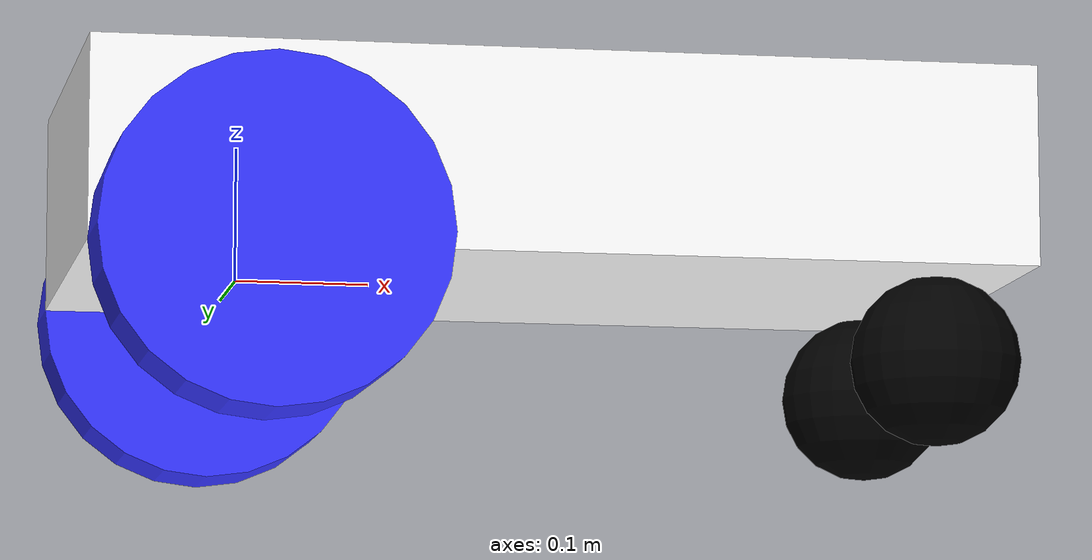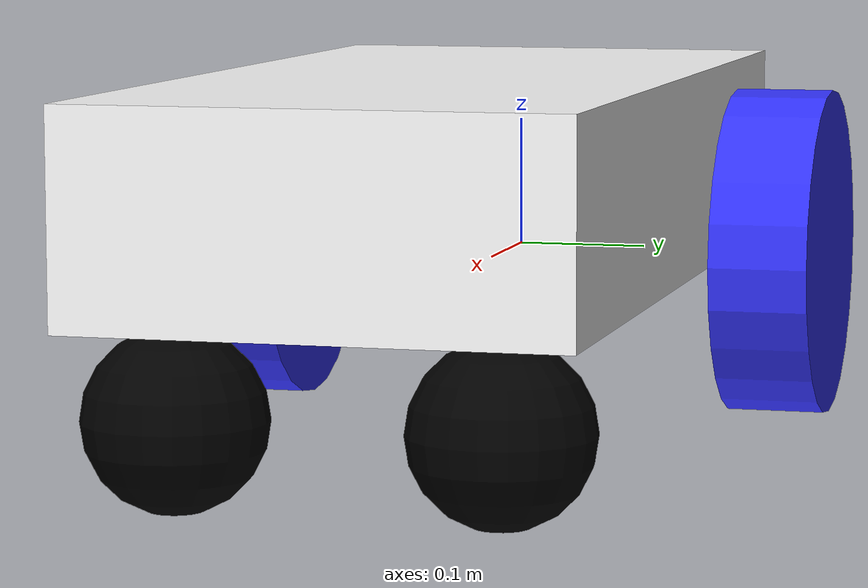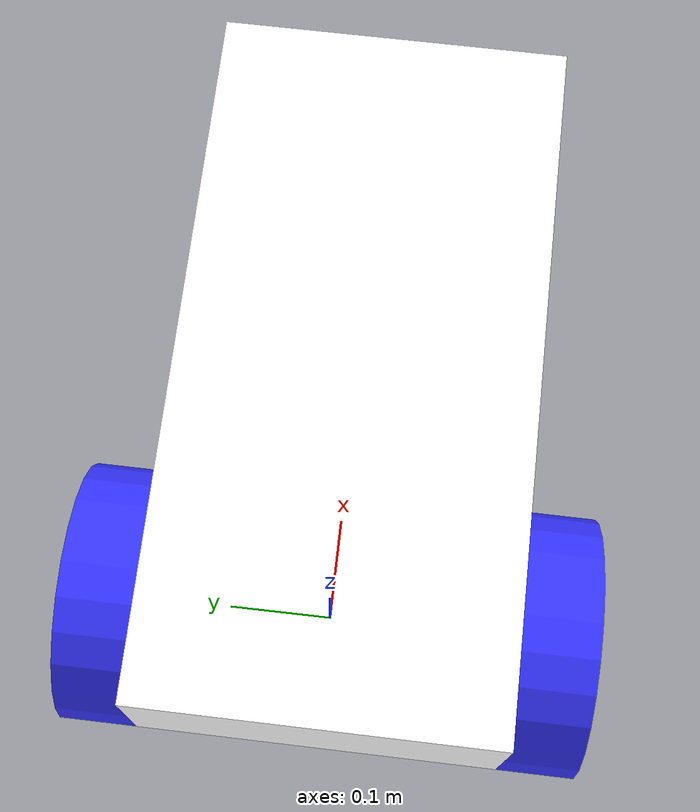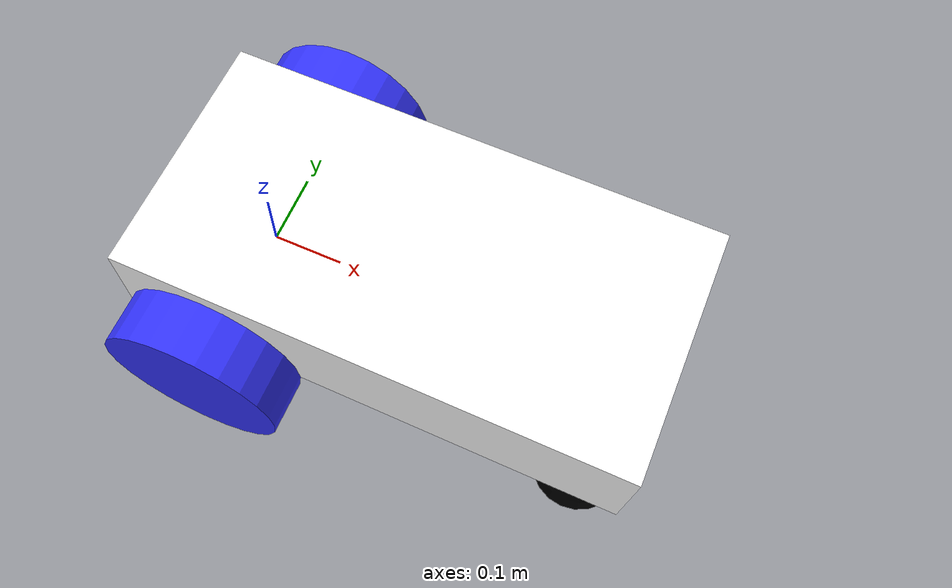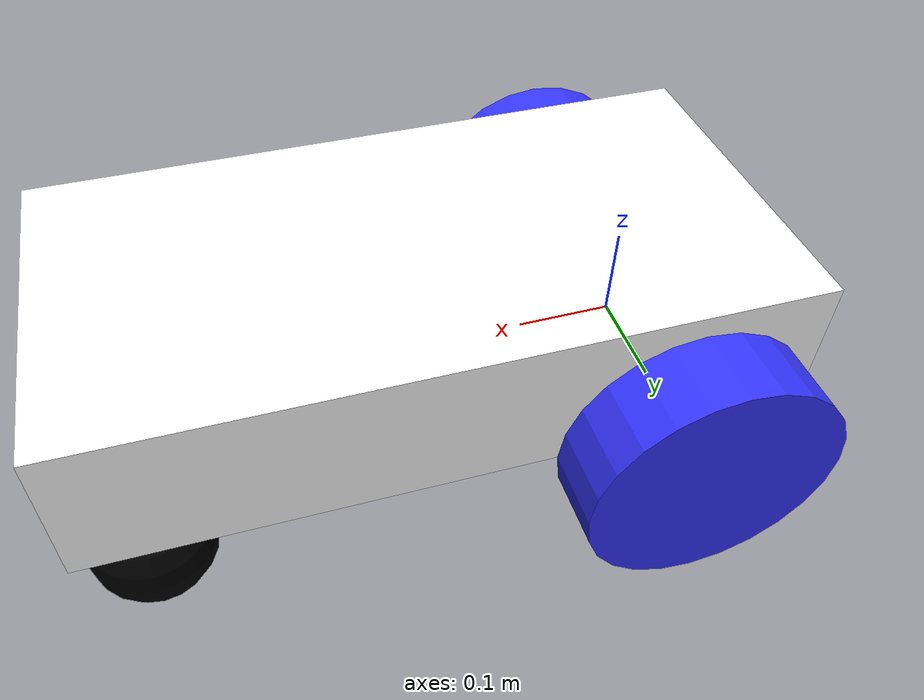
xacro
<?xml version="1.0"?>
<robot xmlns:xacro="http://www.ros.org/wiki/xacro">

<!--This defines the physical structure and properties of the robot.-->

        <!-- Chassis Variables (all in meters/kg) -->
    <xacro:property name="box_length" value="0.7"/> <!--Adjust footprint to reflect changes here-->
    <xacro:property name="box_width" value="0.35"/>
    <xacro:property name="box_height" value="0.15"/>
    <xacro:property name="box_mass" value="10"/>

    <xacro:property name="wheel_width" value="0.075"/> <!--Adjust footprint to reflect changes here-->
    <xacro:property name="wheel_radius" value="0.127"/>
    <xacro:property name="wheel_offset" value="${box_width/2 + wheel_width/2}"/>
    <xacro:property name="wheel_mass" value="1.0"/> <!--kg-->
    <xacro:property name="wheel_torque" value="50"/>
    <xacro:property name="wheel_speed" value="5.0"/> <!--rad/s-->

    <xacro:property name="caster_radius" value="0.0635"/>
    <xacro:property name="caster_Xoffset" value="${box_length - caster_radius}"/>
    <xacro:property name="caster_Yoffset" value="${box_width/2 - caster_radius}"/>
    <xacro:property name="caster_Zoffset" value="${-wheel_radius + caster_radius}"/>
    <xacro:property name="caster_mass" value="0.5"/>

    <xacro:include filename="inertial_macros.xacro" />

    <!--BASE LINK-->
    <link name="base_link">
    </link>

        <!-- BASE_FOOTPRINT -->
        <!--The base location in flat 2D since the robot will be changing elevation-->
    <joint name="base_footprint_joint" type="fixed">
        <parent link="base_link"/>
        <child link="base_footprint"/>
        <origin xyz="0 0 -${wheel_radius}" rpy="0 0 0"/>
    </joint>

    <link name="base_footprint">
    </link>

    <!-- Chassis -->

    <joint name="chassis_joint" type="fixed">
        <parent link="base_link"/>
        <child link="chassis"/>
        <origin xyz="-${wheel_radius} 0 0"/>
    </joint>

    <link name="chassis">
        <visual>
            <origin xyz="${box_length / 2.0} 0 ${box_height / 2.0}" rpy="0 0 0"/>
            <geometry>
                <box size="${box_length} ${box_width} ${box_height}"/>
            </geometry>
            <material name="white"/>
        </visual>
        <collision>
             <origin xyz="${box_length / 2.0} 0 ${box_height / 2.0}" rpy="0 0 0"/>
            <geometry>
                <box size="${box_length} ${box_width} ${box_height}"/>
            </geometry>
        </collision>
        <xacro:inertial_box mass="${box_mass}" x="${box_length}" y="${box_width}" z="${box_height}">
            <origin xyz="${box_length / 2.0} 0 ${box_height / 2.0}" rpy="0 0 0"/>
        </xacro:inertial_box>
    </link>

    <!-- LEFT WHEEL -->

    <joint name="left_wheel_joint" type="continuous">
        <parent link="base_link"/>
        <child link="left_wheel"/>
        <origin xyz="0 ${wheel_offset} 0" rpy="-${pi/2} 0 0"/>
        <axis xyz="0 0 1"/>
        <limit effort="${wheel_torque}" velocity="${wheel_speed}"/>

    </joint>

    <link name="left_wheel">
        <visual>
            <geometry>
                <cylinder length="${wheel_width}" radius="${wheel_radius}" />
            </geometry>
            <material name="blue"/>
        </visual>
        <collision>
            <geometry>
                <sphere radius="${wheel_radius}" /> <!--Sphere for friction/simulation purposes-->
            </geometry>
        </collision>
        <xacro:inertial_cylinder mass="${wheel_mass}" length="${wheel_width}" radius="${wheel_radius}">
            <origin xyz="0 0 0" rpy="0 0 0"/>
        </xacro:inertial_cylinder>
    </link>

    <gazebo reference="left_wheel">
        <!--Fricition parameters-->
        <mu1 value="0.7"/>
        <mu2 value="0.7"/>
    </gazebo>

    <!-- RIGHT WHEEL -->

    <joint name="right_wheel_joint" type="continuous">
        <parent link="base_link"/>
        <child link="right_wheel"/>
        <origin xyz="0 -${wheel_offset} 0" rpy="${pi/2} 0 0"/>
        <axis xyz="0 0 -1"/>
        <limit effort="${wheel_torque}" velocity="${wheel_speed}"/>
    </joint>

    <link name="right_wheel">
        <visual>
            <geometry>
                <cylinder length="${wheel_width}" radius="${wheel_radius}" />
            </geometry>
            <material name="blue"/>
        </visual>
        <collision>
            <geometry>
                <sphere radius="${wheel_radius}" /> <!--Sphere for friction/simulation purposes-->
            </geometry>
        </collision>
        <xacro:inertial_cylinder mass="${wheel_mass}" length="${wheel_width}" radius="${wheel_radius}">
            <origin xyz="0 0 0" rpy="0 0 0"/>
        </xacro:inertial_cylinder>
    </link>

    <gazebo reference="right_wheel">
        <!--Fricition parameters-->
        <mu1 value="0.7"/>
        <mu2 value="0.7"/>
    </gazebo>

    <!-- LEFT CASTER WHEEL -->

    <joint name="left_caster_wheel_joint" type="fixed">
        <parent link="chassis"/>
        <child link="left_caster_wheel"/>
        <origin xyz="${caster_Xoffset} ${caster_Yoffset} ${caster_Zoffset}" rpy="0 0 0"/>
    </joint>

    <link name="left_caster_wheel">
        <visual>
            <geometry>
                <sphere radius="${caster_radius}" />
            </geometry>
            <material name="black"/>
        </visual>
        <collision>
            <geometry>
                <sphere radius="${caster_radius}" />
            </geometry>
        </collision>
        <xacro:inertial_sphere mass="${caster_mass}" radius="${caster_radius}">
            <origin xyz="0 0 0" rpy="0 0 0"/>
        </xacro:inertial_sphere>
    </link>

    <gazebo reference="left_caster_wheel">
        <!--Friction parameters-->
        <mu1 value="0.0"/>
        <mu2 value="0.0"/>
    </gazebo>

       <!-- RIGHT CASTER WHEEL -->

    <joint name="right_caster_wheel_joint" type="fixed">
        <parent link="chassis"/>
        <child link="right_caster_wheel"/>
        <origin xyz="${caster_Xoffset} ${-caster_Yoffset} ${caster_Zoffset}" rpy="0 0 0"/>
    </joint>

    <link name="right_caster_wheel">
        <visual>
            <geometry>
                <sphere radius="${caster_radius}" />
            </geometry>
            <material name="black"/>
        </visual>
        <collision>
            <geometry>
                <sphere radius="${caster_radius}" />
            </geometry>
        </collision>
        <xacro:inertial_sphere mass="${caster_mass}" radius="${caster_radius}">
            <origin xyz="0 0 0" rpy="0 0 0"/>
        </xacro:inertial_sphere>
    </link>

    <gazebo reference="right_caster_wheel">
        <!--Fricition parameters-->
        <mu1 value="0.0"/>
        <mu2 value="0.0"/>
    </gazebo>

        <material name="white">
        <color rgba="1 1 1 1"/>
    </material>

    <material name="orange">
        <color rgba="1 0.3 0.1 1"/>
    </material>

    <material name="blue">
        <color rgba="0.2 0.2 1 1"/>
    </material>

    <material name="black">
        <color rgba="0 0 0 1"/>
    </material>

    <material name="red">
        <color rgba="1 0 0 1"/>
    </material>

</robot>

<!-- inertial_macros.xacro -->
<robot xmlns:xacro="http://www.ros.org/wiki/xacro" >

    <!-- Macros to make physics calculations simpler -->
    <!-- Specify some standard inertial calculations https://en.wikipedia.org/wiki/List_of_moments_of_inertia -->
    <!-- These make use of xacro's mathematical functionality -->

    <xacro:macro name="inertial_sphere" params="mass radius *origin">
        <inertial>
            <xacro:insert_block name="origin"/>
            <mass value="${mass}" />
            <inertia ixx="${(2/5) * mass * (radius*radius)}" ixy="0.0" ixz="0.0"
                    iyy="${(2/5) * mass * (radius*radius)}" iyz="0.0"
                    izz="${(2/5) * mass * (radius*radius)}" />
        </inertial>
    </xacro:macro>

    <xacro:macro name="inertial_box" params="mass x y z *origin">
        <inertial>
            <xacro:insert_block name="origin"/>
            <mass value="${mass}" />
            <inertia ixx="${(1/12) * mass * (y*y+z*z)}" ixy="0.0" ixz="0.0"
                    iyy="${(1/12) * mass * (x*x+z*z)}" iyz="0.0"
                    izz="${(1/12) * mass * (x*x+y*y)}" />
        </inertial>
    </xacro:macro>

    <xacro:macro name="inertial_cylinder" params="mass length radius *origin">
        <inertial>
            <xacro:insert_block name="origin"/>
            <mass value="${mass}" />
            <inertia ixx="${(1/12) * mass * (3*radius*radius + length*length)}" ixy="0.0" ixz="0.0"
                    iyy="${(1/12) * mass * (3*radius*radius + length*length)}" iyz="0.0"
                    izz="${(1/2) * mass * (radius*radius)}" />
        </inertial>
    </xacro:macro>

</robot>
